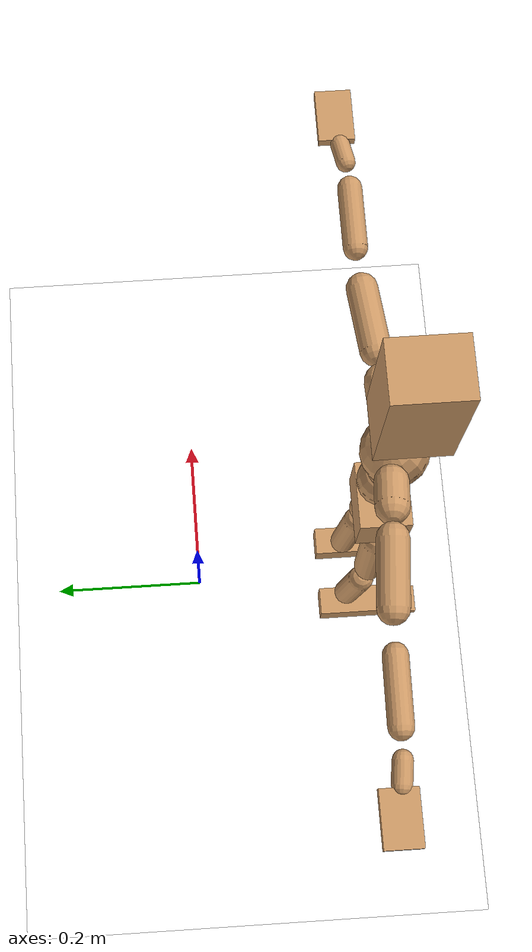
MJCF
<mujoco model="humanoid">
  <option integrator="implicitfast" />

  <visual>
    <global offwidth="1280" offheight="960" />
    <headlight active="1" ambient="0.34 0.34 0.34" diffuse="0.5 0.5 0.5" />
  </visual>

  <default>
    <joint damping="2" stiffness="2" armature="0.01" limited="true" solimplimit="0 .99 .01" />
    <geom condim="1" friction="0.7 0.005 0.0001" solimp=".99 .99 .003" solref="0.015 1" margin="0.001" rgba="0.8 0.6 .4 1" />
    <default class="smplcontact">
      <geom condim="3" friction="1. 0.005 0.0001" solref="0.015 1" solimp="0.98 0.98 0.001" priority="1" />
    </default>
    <default class="stiff_medium">
      <joint stiffness="10" />
    </default>
    <default class="stiff_medium_higher">
      <joint stiffness="50" />
    </default>
    <default class="stiff_high">
      <joint stiffness="100" />
    </default>
  </default>

  <asset>
    <texture type="skybox" builtin="gradient" rgb1="0.99 0.99 0.99" rgb2="0.608 0.828 0.892" width="100" />
    <texture builtin="flat" height="1278" mark="cross" markrgb="1 1 1" name="texgeom" random="0.01" rgb1="0.8 0.6 0.4" rgb2="0.8 0.6 0.4" type="cube" width="127" />
    <texture name="texplane" type="2d" builtin="checker" markrgb="1 1 1" rgb1="0.756 0.772 0.76" rgb2="0.6 0.6 0.6" width="100" height="100" />
    <material name="MatPlane" reflectance="0.5" texture="texplane" texrepeat="1 1" texuniform="true" />
    <material name="geom" texture="texgeom" texuniform="true" />
  </asset>

  <worldbody>
    <light name="tracking_light" pos="0 0 7" dir="0 0 -1" directional="true" cutoff="100" exponent="1" diffuse="1 1 1" specular="0.1 0.1 0.1" mode="trackcom" />
    <camera name="back" pos="0 3 2.4" xyaxes="-1 0 0 0 -1 2" mode="trackcom" />
    <camera name="side" pos="-3 0 2.4" xyaxes="0 -1 0 1 0 2" mode="trackcom" />
    <camera name="front_side" pos="-2.8 -2.8 0.8" xyaxes="0.5 -0.5 0 0.1 0.1 1" mode="trackcom" />
    <geom condim="3" name="floor" pos="0 0 0" rgba="1 1 1 1" size="100 100 .2" type="plane" material="MatPlane" />
    <body name="Pelvis" pos="-0.0018 -0.2233 0.409627" euler="90 0 0">
      <site name="Pelvis" size="0.01" />
      <freejoint name="Pelvis" />
      <geom type="box" pos="0 -0.0063162 -0.00204875" size="0.0398202 0.0376884 0.0309175" quat="1.0000 0.0000 0.0000 0.0000" density="3165.830099" name="Pelvis" />
      <body name="L_Hip" pos="0.0258888 -0.0477108 -0.002533">
        <joint name="L_Hip_x" type="hinge" pos="0 0 0" axis="1 0 0" stiffness="0.18235260416666665" range="-160.0 22.92" class="stiff_medium" damping="0.19026563786426617" armature="8.823202258754832e-05"/>
        <joint name="L_Hip_y" type="hinge" pos="0 0 0" axis="0 1 0" stiffness="0.18828845050878812" range="-70.0 70.0" class="stiff_medium" damping="0.11500928606782551" armature="7.024932143256214e-05"/>
        <joint name="L_Hip_z" type="hinge" pos="0 0 0" axis="0 0 1" stiffness="0.1865578125" range="-28.65 90.0" class="stiff_medium" damping="0.1281541375755882" armature="8.803428147906047e-05"/>
        <geom type="capsule" density="2040.816327" fromto="0.00297807 -0.0324683 -0.000389521 0.0118525 -0.129957 -0.00155835" size="0.0189973" name="L_Hip" />
        <body name="L_Knee" pos="0.0148306 -0.162426 -0.00194787">
          <joint name="L_Knee_x" type="hinge" pos="0 0 0" axis="1 0 0" range="-5.16 171.89" damping="0.11375579093782" armature="0.00010128647240603109" stiffness="0.0399250625"/>
          <joint name="L_Knee_y" type="hinge" pos="0 0 0" axis="0 1 0" range="-4.58 6.88" damping="0.11122675483468286" armature="0.00010198501887458814" stiffness="0.037908113636363636"/>
          <joint name="L_Knee_z" type="hinge" pos="0 0 0" axis="0 0 1" range="-6.88 4.58" damping="0.11702980073613345" armature="0.00010023213493265659" stiffness="0.042700796099290776"/>
          <geom type="capsule" density="1234.567901" fromto="-0.00117293 -0.0344578 -0.00377438 -0.00472271 -0.137834 -0.0151597" size="0.0167115" name="L_Knee" />
          <body name="L_Ankle" pos="-0.00589564 -0.172292 -0.018934">
            <joint name="L_Ankle_x" type="hinge" pos="0 0 0" axis="1 0 0" range="-45.84 45.84" class="stiff_medium" damping="0.16036848580518293" armature="0.0001830664840301758" stiffness="0.390235446969697"/>
            <joint name="L_Ankle_y" type="hinge" pos="0 0 0" axis="0 1 0" range="-74.48 22.92" class="stiff_medium" damping="0.07487786336835861" armature="0.00018441544738383804" stiffness="0.33780578351449275"/>
            <joint name="L_Ankle_z" type="hinge" pos="0 0 0" axis="0 0 1" range="-4.58 4.58" class="stiff_medium" damping="0.09935943537263363" armature="0.0001010030677281139" stiffness="0.27150708333333334"/>
            <geom type="box" pos="0.00867925 -0.00890275 0.0126953" size="0.0179918 0.017284 0.044591" quat="1.0000 0.0000 0.0000 0.0000" density="449.071558" name="L_Ankle" class="smplcontact" />
            <body name="L_Toe" pos="0.009834 -0.0207855 0.0625848">
              <joint name="L_Toe_x" type="hinge" pos="0 0 0" axis="1 0 0" range="-91.67 22.92" armature="0.00018943004890723808" damping="0.05364322478676886" stiffness="0.07595404166666667"/>
              <joint name="L_Toe_y" type="hinge" pos="0 0 0" axis="0 1 0" range="-4.58 4.58" armature="0.00016454146373295087" damping="0.0498111636025279" stiffness="0.07539595075757577"/>
              <joint name="L_Toe_z" type="hinge" pos="0 0 0" axis="0 0 1" range="-4.58 4.58" armature="0.0001010025448747252" damping="0.033097939538757844" stiffness="0.05423"/>
              <geom type="box" pos="-0.0011175 0.00204875 0.0130101" size="0.0178055 0.00745 0.0260202" quat="1.0000 0.0000 0.0000 0.0000" density="423.206892" name="L_Toe" class="smplcontact" />
            </body>
          </body>
        </body>
      </body>
      <body name="R_Hip" pos="-0.0252182 -0.047241 -0.00160175">
        <joint name="R_Hip_x" type="hinge" pos="0 0 0" axis="1 0 0" stiffness="0.18235260416666665" range="-160.0 22.92" class="stiff_medium" damping="0.19026563786426617" armature="8.823202258754832e-05"/>
        <joint name="R_Hip_y" type="hinge" pos="0 0 0" axis="0 1 0" stiffness="0.18828845050878812" range="-70.0 70.0" class="stiff_medium" damping="0.11500928606782551" armature="7.024932143256214e-05"/>
        <joint name="R_Hip_z" type="hinge" pos="0 0 0" axis="0 0 1" stiffness="0.1865578125" range="-90.0 28.65" class="stiff_medium" damping="0.1281541375755882" armature="8.803428147906047e-05"/>
        <geom type="capsule" density="2040.816327" fromto="-0.00332475 -0.0331178 -0.000775013 -0.0132382 -0.132512 -0.00306938" size="0.0187193" name="R_Hip" />
        <body name="R_Knee" pos="-0.0165629 -0.165629 -0.0038444">
          <joint name="R_Knee_x" type="hinge" pos="0 0 0" axis="1 0 0" range="-5.16 171.89" damping="0.11375579093782" armature="0.00010128647240603109" stiffness="0.0399250625"/>
          <joint name="R_Knee_y" type="hinge" pos="0 0 0" axis="0 1 0" range="-6.88 4.58" damping="0.11122675483468286" armature="0.00010198501887458814" stiffness="0.037908113636363636"/>
          <joint name="R_Knee_z" type="hinge" pos="0 0 0" axis="0 0 1" range="-4.58 6.88" damping="0.11702980073613345" armature="0.00010023213493265659" stiffness="0.042700796099290776"/>
          <geom type="capsule" density="1234.567901" fromto="0.00137722 -0.0345033 -0.00367194 0.00544648 -0.137966 -0.0146243" size="0.0167115" name="R_Knee" />
          <body name="R_Ankle" pos="0.0068237 -0.17247 -0.0182963">
            <joint name="R_Ankle_x" type="hinge" pos="0 0 0" axis="1 0 0" range="-45.84 45.84" class="stiff_medium" damping="0.16036848580518293" armature="0.0001830664840301758" stiffness="0.390235446969697"/>
            <joint name="R_Ankle_y" type="hinge" pos="0 0 0" axis="0 1 0" range="-22.92 74.48" class="stiff_medium" damping="0.07487786336835861" armature="0.00018441544738383804" stiffness="0.33780578351449275"/>
            <joint name="R_Ankle_z" type="hinge" pos="0 0 0" axis="0 0 1" range="-4.58 4.58" class="stiff_medium" damping="0.09935943537263363" armature="0.0001010030677281139" stiffness="0.27150708333333334"/>
            <geom type="box" pos="-0.007897 -0.0064815 0.0134298" size="0.0179918 0.0178055 0.0453779" quat="1.0000 0.0000 0.0000 0.0000" density="434.700981" name="R_Ankle" class="smplcontact" />
            <body name="R_Toe" pos="-0.0094615 -0.0179172 0.0646832">
              <joint name="R_Toe_x" type="hinge" pos="0 0 0" axis="1 0 0" range="-91.67 22.92" armature="0.00018943004890723808" damping="0.05364322478676886" stiffness="0.07595404166666667"/>
              <joint name="R_Toe_y" type="hinge" pos="0 0 0" axis="0 1 0" range="-4.58 4.58" armature="0.00016454146373295087" damping="0.0498111636025279" stiffness="0.07539595075757577"/>
              <joint name="R_Toe_z" type="hinge" pos="0 0 0" axis="0 0 1" range="-4.58 4.58" armature="0.0001010025448747252" damping="0.033097939538757844" stiffness="0.05423"/>
              <geom type="box" pos="0.0015645 0.00167625 0.0119084" size="0.0178427 0.008046 0.0258628" quat="1.0000 0.0000 0.0000 0.0000" density="407.384095" name="R_Toe" class="smplcontact" />
            </body>
          </body>
        </body>
      </body>
      <body name="Torso" pos="-0.00093125 0.056898 -0.00994575">
        <joint name="Torso_x" type="hinge" pos="0 0 0" axis="1 0 0" range="-25.78 57.3" class="stiff_medium" damping="0.6975808108661036" armature="0.000380460678160998" stiffness="0.5684558695652174"/>
        <joint name="Torso_y" type="hinge" pos="0 0 0" axis="0 1 0" range="-57.3 57.3" class="stiff_high" damping="0.5225025891735547" armature="0.00011451120193379242" stiffness="5.960311111111112"/>
        <joint name="Torso_z" type="hinge" pos="0 0 0" axis="0 0 1" range="-34.38 34.38" class="stiff_high" damping="0.8097336039904492" armature="0.0002931874650336505" stiffness="5.590864102564101"/>
        <geom type="capsule" density="2040.816327" fromto="0.00128568 0.0321829 0.000257137 0.00155033 0.0393284 0.000310067" size="0.0290451" name="Torso" />
        <body name="Spine" pos="0.00283658 0.0715642 0.000567316">
          <joint name="Spine_x" type="hinge" pos="0 0 0" axis="1 0 0" stiffness="0.6281864583333334" range="-25.78 57.3" class="stiff_medium" damping="0.8234174730231572" armature="0.00047969928240641866"/>
          <joint name="Spine_y" type="hinge" pos="0 0 0" axis="0 1 0" stiffness="0.705954705882353" range="-57.3 57.3" class="stiff_high" damping="0.2275689407086761" armature="0.00011462231204368893"/>
          <joint name="Spine_z" type="hinge" pos="0 0 0" axis="0 0 1" stiffness="1.325285" range="-34.38 34.38" class="stiff_high" damping="0.5213367694272" armature="0.00028483603648019263"/>
          <geom type="capsule" density="2040.816327" fromto="0.000332166 0.0125814 0.00606797 0.000385096 0.0153867 0.00744415" size="0.0285163" name="Spine" />
          <body name="Chest" pos="0.000717263 0.0279681 0.0135121">
            <joint name="Chest_x" type="hinge" pos="0 0 0" axis="1 0 0" stiffness="0.7266799999999998" range="-25.78 57.3" class="stiff_medium" damping="0.9345072666208408" armature="0.0005341209833257832"/>
            <joint name="Chest_y" type="hinge" pos="0 0 0" axis="0 1 0" stiffness="0.6774200000000001" range="-57.3 57.3" class="stiff_high" damping="0.2231245872745042" armature="0.00011483039843823313"/>
            <joint name="Chest_z" type="hinge" pos="0 0 0" axis="0 0 1" stiffness="1.510981081081081" range="-34.38 34.38" class="stiff_high" damping="0.5444287567577323" armature="0.0002724523700528208"/>
            <geom type="capsule" density="2040.816327" fromto="-0.000408327 0.0360871 -0.00920171 -0.000461257 0.0440796 -0.011266" size="0.0378455" name="Chest" />
            <body name="Neck" pos="-0.00126932 0.112765 -0.0244619">
              <joint name="Neck_x" type="hinge" pos="0 0 0" axis="1 0 0" range="-28.65 57.3" class="stiff_medium_higher" damping="1.1234691394679754" armature="0.0009683138544483662" stiffness="6.517426666666666"/>
              <joint name="Neck_y" type="hinge" pos="0 0 0" axis="0 1 0" range="-40.11 40.11" class="stiff_medium_higher" damping="0.8742511543280646" armature="0.0006130327976089243" stiffness="6.233884090909092"/>
              <joint name="Neck_z" type="hinge" pos="0 0 0" axis="0 0 1" range="-40.11 40.11" class="stiff_medium_higher" damping="1.1951336836934041" armature="0.0009990208582020947" stiffness="7.148722222222221"/>
              <geom type="capsule" density="1000" fromto="0.00052978 0.00682198 0.0054001 0.00215604 0.0272814 0.0215578" size="0.0163238" name="Neck" />
              <body name="Head" pos="0.00272274 0.0340968 0.0269153">
                <joint name="Head_x" type="hinge" pos="0 0 0" axis="1 0 0" range="-28.65 57.3" class="stiff_medium_higher" damping="0.2880398144245498" armature="0.0012002859655494793" stiffness="8.64033"/>
                <joint name="Head_y" type="hinge" pos="0 0 0" axis="0 1 0" range="-40.11 40.11" class="stiff_medium_higher" damping="0.20152609301521382" armature="0.0006583691987363101" stiffness="7.71086463414634"/>
                <joint name="Head_z" type="hinge" pos="0 0 0" axis="0 0 1" range="-40.11 40.11" class="stiff_medium_higher" damping="0.2862990834935576" armature="0.0012334850921524516" stiffness="8.306460869565218"/>
                <geom type="box" pos="-0.0022785 0.0665848 -0.006293" size="0.0328755 0.0877155 0.04123" quat="1.0000 0.0000 0.0000 0.0000" density="1018.069894" name="Head" />
                <geom type="capsule" name="nose" size="0.01085 0.005425" pos="0 0.053207 0.027125" quat="1 0 0 0" mass="0" contype="0" conaffinity="0" />
              </body>
            </body>
            <body name="L_Thorax" pos="0.0296404 0.0644388 -0.0176507">
              <joint name="L_Thorax_x" type="hinge" pos="0 0 0" axis="1 0 0" range="-10.89 4.58" class="stiff_medium_higher" damping="0.3074086792088993" armature="9.787589825785088e-05" stiffness="1.2068867021276595"/>
              <joint name="L_Thorax_y" type="hinge" pos="0 0 0" axis="0 1 0" range="-28.65 17.19" class="stiff_medium_higher" damping="0.3446673158617735" armature="0.00011905539702737181" stiffness="1.247271875"/>
              <joint name="L_Thorax_z" type="hinge" pos="0 0 0" axis="0 0 1" range="-31.51 40.11" class="stiff_medium_higher" damping="0.3438803344793283" armature="0.00011913908641885075" stiffness="1.240710416666667"/>
              <geom type="capsule" density="1000" fromto="0.00936979 0.00314042 -0.000921768 0.0374779 0.0125613 -0.00365021" size="0.0191415" name="L_Thorax" />
              <body name="L_Shoulder" pos="0.0468477 0.0157017 -0.00457198">
                <joint name="L_Shoulder_x" type="hinge" pos="0 0 0" axis="1 0 0" range="-97.4 97.4" class="stiff_medium" damping="0.08219494194113662" armature="7.783660906213912e-05" stiffness="0.24110364583333327"/>
                <joint name="L_Shoulder_y" type="hinge" pos="0 0 0" axis="0 1 0" range="-108.86 80.21" class="stiff_medium" damping="0.09952806925016006" armature="0.00011579968543447627" stiffness="0.23761906249999998"/>
                <joint name="L_Shoulder_z" type="hinge" pos="0 0 0" axis="0 0 1" range="-97.4 85.94" class="stiff_medium" damping="0.09950434634237408" armature="0.00011580779639098313" stiffness="0.2374891666666667"/>
                <geom type="capsule" density="1000" fromto="0.0244194 -0.00121412 -0.00258733 0.0977233 -0.00478992 -0.0103506" size="0.0173557" name="L_Shoulder" />
                <body name="L_Elbow" pos="0.122143 -0.00600404 -0.0129379">
                  <joint name="L_Elbow_x" type="hinge" pos="0 0 0" axis="1 0 0" range="-17.19 4.58" damping="0.06596173600906506" armature="6.945742575842557e-05" stiffness="0.05011358333333333"/>
                  <joint name="L_Elbow_y" type="hinge" pos="0 0 0" axis="0 1 0" range="-180.0 17.19" damping="0.08797758448200091" armature="0.00012355963332524514" stiffness="0.0501138125"/>
                  <joint name="L_Elbow_z" type="hinge" pos="0 0 0" axis="0 0 1" range="-100.84 4.58" damping="0.08806795910326286" armature="0.00012358924577732738" stiffness="0.050204791666666665"/>
                  <geom type="capsule" density="1000" fromto="0.0234309 0.000846575 -9.85512e-05 0.0938177 0.00338728 -0.000427901" size="0.0135958" name="L_Elbow" />
                  <body name="L_Wrist" pos="0.117249 0.00423385 -0.000560023">
                    <joint name="L_Wrist_x" type="hinge" pos="0 0 0" axis="1 0 0" range="-180.0 22.92" armature="9.036925364159238e-05" damping="0.033397282021969094" stiffness="0.061712275"/>
                    <joint name="L_Wrist_y" type="hinge" pos="0 0 0" axis="0 1 0" range="-17.19 17.19" armature="0.0001533316168566774" damping="0.04302365919743731" stiffness="0.06036052083333333"/>
                    <joint name="L_Wrist_z" type="hinge" pos="0 0 0" axis="0 0 1" range="-22.92 22.92" armature="0.00015571537256287696" damping="0.04355124062439201" stiffness="0.060903124999999995"/>
                    <geom type="capsule" density="1000" fromto="0.00790398 -0.000757253 -0.00141143 0.0316172 -0.0030627 -0.00564593" size="0.0106753" name="L_Wrist" class="smplcontact" />
                    <body name="L_Hand" pos="0.0395201 -0.00385342 -0.00702359">
                      <joint name="L_Hand_x" type="hinge" pos="0 0 0" axis="1 0 0" range="-17.19 17.19" armature="0.00010050220989139483" damping="0.03839170806781733" stiffness="0.07332790243902439"/>
                      <joint name="L_Hand_y" type="hinge" pos="0 0 0" axis="0 1 0" range="-51.57 51.57" armature="0.0001748013602223626" damping="0.0510241559168507" stiffness="0.07446922849213691"/>
                      <joint name="L_Hand_z" type="hinge" pos="0 0 0" axis="0 0 1" range="-91.67 91.67" armature="0.00019492055321943701" damping="0.05425999109548453" stiffness="0.07552170833333334"/>
                      <geom type="box" pos="0.0257346 0.0003725 -0.0021605" size="0.030537 0.0058855 0.0200405" quat="1.0000 0.0000 0.0000 0.0000" density="400.552564" name="L_Hand" class="smplcontact" />
                    </body>
                  </body>
                </body>
              </body>
            </body>
            <body name="R_Thorax" pos="-0.0310176 0.0632477 -0.0193256">
              <joint name="R_Thorax_x" type="hinge" pos="0 0 0" axis="1 0 0" range="-10.89 4.58" class="stiff_medium_higher" damping="0.3074086792088993" armature="9.787589825785088e-05" stiffness="1.2068867021276595"/>
              <joint name="R_Thorax_y" type="hinge" pos="0 0 0" axis="0 1 0" range="-17.19 28.65" class="stiff_medium_higher" damping="0.3446673158617735" armature="0.00011905539702737181" stiffness="1.247271875"/>
              <joint name="R_Thorax_z" type="hinge" pos="0 0 0" axis="0 0 1" range="-40.11 31.51" class="stiff_medium_higher" damping="0.3438803344793283" armature="0.00011913908641885075" stiffness="1.240710416666667"/>
              <geom type="capsule" density="1000" fromto="-0.00988374 0.00334606 -0.000931513 -0.0395362 0.0133847 -0.00376291" size="0.0187741" name="R_Thorax" />
              <body name="R_Shoulder" pos="-0.0494244 0.016769 -0.00469485">
                <joint name="R_Shoulder_x" type="hinge" pos="0 0 0" axis="1 0 0" range="-97.4 97.4" class="stiff_medium" damping="0.08219494194113662" armature="7.783660906213912e-05" stiffness="0.24110364583333327"/>
                <joint name="R_Shoulder_y" type="hinge" pos="0 0 0" axis="0 1 0" range="-80.21 108.86" class="stiff_medium" damping="0.09952806925016006" armature="0.00011579968543447627" stiffness="0.23761906249999998"/>
                <joint name="R_Shoulder_z" type="hinge" pos="0 0 0" axis="0 0 1" range="-85.94 97.4" class="stiff_medium" damping="0.09950434634237408" armature="0.00011580779639098313" stiffness="0.2374891666666667"/>
                <geom type="capsule" density="1000" fromto="-0.023855 -0.00126542 -0.00201796 -0.0955122 -0.00502942 -0.00804036" size="0.0178257" name="R_Shoulder" />
                <body name="R_Elbow" pos="-0.119367 -0.00626124 -0.0100583">
                  <joint name="R_Elbow_x" type="hinge" pos="0 0 0" axis="1 0 0" range="-17.19 4.58" damping="0.06596173600906506" armature="6.945742575842557e-05" stiffness="0.05011358333333333"/>
                  <joint name="R_Elbow_y" type="hinge" pos="0 0 0" axis="0 1 0" range="-17.19 180.0" damping="0.08797758448200091" armature="0.00012355963332524514" stiffness="0.0501138125"/>
                  <joint name="R_Elbow_z" type="hinge" pos="0 0 0" axis="0 0 1" range="-4.58 100.84" damping="0.08806795910326286" armature="0.00012358924577732738" stiffness="0.050204791666666665"/>
                  <geom type="capsule" density="1000" fromto="-0.0240428 0.000744091 -0.000517749 -0.0960764 0.00290839 -0.0020704" size="0.0136966" name="R_Elbow" />
                  <body name="R_Wrist" pos="-0.120119 0.00365249 -0.00262172">
                    <joint name="R_Wrist_x" type="hinge" pos="0 0 0" axis="1 0 0" range="-180.0 22.92" armature="9.036925364159238e-05" damping="0.033397282021969094" stiffness="0.061712275"/>
                    <joint name="R_Wrist_y" type="hinge" pos="0 0 0" axis="0 1 0" range="-17.19 17.19" armature="0.0001533316168566774" damping="0.04302365919743731" stiffness="0.06036052083333333"/>
                    <joint name="R_Wrist_z" type="hinge" pos="0 0 0" axis="0 0 1" range="-22.92 22.92" armature="0.00015571537256287696" damping="0.04355124062439201" stiffness="0.060903124999999995"/>
                    <geom type="capsule" density="1000" fromto="-0.00795176 -0.000568788 -0.000983046 -0.0318532 -0.00230964 -0.00390015" size="0.0109438" name="R_Wrist" class="smplcontact" />
                    <body name="R_Hand" pos="-0.0398033 -0.00287831 -0.00484942">
                      <joint name="R_Hand_x" type="hinge" pos="0 0 0" axis="1 0 0" range="-17.19 17.19" armature="0.00010050220989139483" damping="0.03839170806781733" stiffness="0.07332790243902439"/>
                      <joint name="R_Hand_y" type="hinge" pos="0 0 0" axis="0 1 0" range="-51.57 51.57" armature="0.0001748013602223626" damping="0.0510241559168507" stiffness="0.07446922849213691"/>
                      <joint name="R_Hand_z" type="hinge" pos="0 0 0" axis="0 0 1" range="-91.67 91.67" armature="0.00019492055321943701" damping="0.05425999109548453" stiffness="0.07552170833333334"/>
                      <geom type="box" pos="-0.0241164 -0.00033525 -0.00294275" size="0.0297018 0.006109 0.0203385" quat="1.0000 0.0000 0.0000 0.0000" density="403.679611" name="R_Hand" class="smplcontact" />
                    </body>
                  </body>
                </body>
              </body>
            </body>
          </body>
        </body>
      </body>
    </body>
  </worldbody>
  <actuator>
    <general name="L_Hip_x" joint="L_Hip_x" biastype="affine" gainprm="5.2395385443522" biasprm="-3.926503081455279 -3.282346875 -0.02536875171523549" ctrllimited="true" ctrlrange="-1 1" forcerange="-6.56469375 6.56469375" />
    <general name="L_Hip_y" joint="L_Hip_y" biastype="affine" gainprm="4.140679290119499" biasprm="0.0 -3.389192109158186 -0.023001857213565104" ctrllimited="true" ctrlrange="-1 1" forcerange="-6.778384218316372 6.778384218316372" />
    <general name="L_Hip_z" joint="L_Hip_z" biastype="affine" gainprm="3.4769709352263574" biasprm="1.7978269437516814 -3.358040625 -0.025630827515117638" ctrllimited="true" ctrlrange="-1 1" forcerange="-6.71608125 6.71608125" />
    <general name="L_Knee_x" joint="L_Knee_x" biastype="affine" gainprm="5.551769378240067" biasprm="5.228164407986253 -3.593255625 -0.028438947734455" ctrllimited="true" ctrlrange="-1 1" forcerange="-7.18651125 7.18651125" />
    <general name="L_Knee_y" joint="L_Knee_y" biastype="affine" gainprm="0.3411981540072958" biasprm="0.06847781450408205 -3.4117302272727272 -0.027806688708670715" ctrllimited="true" ctrlrange="-1 1" forcerange="-6.8234604545454545 6.8234604545454545" />
    <general name="L_Knee_z" joint="L_Knee_z" biastype="affine" gainprm="0.38433547349462716" biasprm="-0.07713539171358137 -3.84307164893617 -0.029257450184033362" ctrllimited="true" ctrlrange="-1 1" forcerange="-7.68614329787234 7.68614329787234" />
    <general name="L_Ankle_x" joint="L_Ankle_x" biastype="affine" gainprm="2.809902184244795" biasprm="0.0 -3.5121190227272727 -0.053456161935060975" ctrllimited="true" ctrlrange="-1 1" forcerange="-7.024238045454545 7.024238045454545" />
    <general name="L_Ankle_y" joint="L_Ankle_y" biastype="affine" gainprm="2.584139288664284" biasprm="-1.367948888331935 -3.040252051630435 -0.04991857557890574" ctrllimited="true" ctrlrange="-1 1" forcerange="-6.08050410326087 6.08050410326087" />
    <general name="L_Ankle_z" joint="L_Ankle_z" biastype="affine" gainprm="0.19532890677304848" biasprm="0.0 -2.44356375 -0.033119811790877876" ctrllimited="true" ctrlrange="-1 1" forcerange="-4.8871275 4.8871275" />
    <general name="L_Toe_x" joint="L_Toe_x" biastype="affine" gainprm="2.734308299038481" biasprm="-1.6404895327593645 -2.7343455 -0.021457289914707547" ctrllimited="true" ctrlrange="-1 1" forcerange="-5.468691 5.468691" />
    <general name="L_Toe_y" joint="L_Toe_y" biastype="affine" gainprm="0.21696684234954272" biasprm="0.0 -2.7142542272727277 -0.01992446544101116" ctrllimited="true" ctrlrange="-1 1" forcerange="-5.428508454545455 5.428508454545455" />
    <general name="L_Toe_z" joint="L_Toe_z" biastype="affine" gainprm="0.15605760975742383" biasprm="0.0 -1.95228 -0.013239175815503138" ctrllimited="true" ctrlrange="-1 1" forcerange="-3.90456 3.90456" />
    <general name="R_Hip_x" joint="R_Hip_x" biastype="affine" gainprm="5.2395385443522" biasprm="-3.926503081455279 -3.282346875 -0.02536875171523549" ctrllimited="true" ctrlrange="-1 1" forcerange="-6.56469375 6.56469375" />
    <general name="R_Hip_y" joint="R_Hip_y" biastype="affine" gainprm="4.140679290119499" biasprm="0.0 -3.389192109158186 -0.023001857213565104" ctrllimited="true" ctrlrange="-1 1" forcerange="-6.778384218316372 6.778384218316372" />
    <general name="R_Hip_z" joint="R_Hip_z" biastype="affine" gainprm="3.4769709352263574" biasprm="-1.7978269437516814 -3.358040625 -0.025630827515117638" ctrllimited="true" ctrlrange="-1 1" forcerange="-6.71608125 6.71608125" />
    <general name="R_Knee_x" joint="R_Knee_x" biastype="affine" gainprm="5.551769378240067" biasprm="5.228164407986253 -3.593255625 -0.028438947734455" ctrllimited="true" ctrlrange="-1 1" forcerange="-7.18651125 7.18651125" />
    <general name="R_Knee_y" joint="R_Knee_y" biastype="affine" gainprm="0.3411981540072958" biasprm="-0.06847781450408205 -3.4117302272727272 -0.027806688708670715" ctrllimited="true" ctrlrange="-1 1" forcerange="-6.8234604545454545 6.8234604545454545" />
    <general name="R_Knee_z" joint="R_Knee_z" biastype="affine" gainprm="0.38433547349462716" biasprm="0.07713539171358137 -3.84307164893617 -0.029257450184033362" ctrllimited="true" ctrlrange="-1 1" forcerange="-7.68614329787234 7.68614329787234" />
    <general name="R_Ankle_x" joint="R_Ankle_x" biastype="affine" gainprm="2.809902184244795" biasprm="0.0 -3.5121190227272727 -0.053456161935060975" ctrllimited="true" ctrlrange="-1 1" forcerange="-7.024238045454545 7.024238045454545" />
    <general name="R_Ankle_y" joint="R_Ankle_y" biastype="affine" gainprm="2.584139288664284" biasprm="1.367948888331935 -3.040252051630435 -0.04991857557890574" ctrllimited="true" ctrlrange="-1 1" forcerange="-6.08050410326087 6.08050410326087" />
    <general name="R_Ankle_z" joint="R_Ankle_z" biastype="affine" gainprm="0.19532890677304848" biasprm="0.0 -2.44356375 -0.033119811790877876" ctrllimited="true" ctrlrange="-1 1" forcerange="-4.8871275 4.8871275" />
    <general name="R_Toe_x" joint="R_Toe_x" biastype="affine" gainprm="2.734308299038481" biasprm="-1.6404895327593645 -2.7343455 -0.021457289914707547" ctrllimited="true" ctrlrange="-1 1" forcerange="-5.468691 5.468691" />
    <general name="R_Toe_y" joint="R_Toe_y" biastype="affine" gainprm="0.21696684234954272" biasprm="0.0 -2.7142542272727277 -0.01992446544101116" ctrllimited="true" ctrlrange="-1 1" forcerange="-5.428508454545455 5.428508454545455" />
    <general name="R_Toe_z" joint="R_Toe_z" biastype="affine" gainprm="0.15605760975742383" biasprm="0.0 -1.95228 -0.013239175815503138" ctrllimited="true" ctrlrange="-1 1" forcerange="-3.90456 3.90456" />
    <general name="Torso_x" joint="Torso_x" biastype="affine" gainprm="9.891265439408823" biasprm="3.7526803881820654 -13.64294086956522 -0.1860215495642943" ctrllimited="true" ctrlrange="-1 1" forcerange="-20.46441130434783 20.46441130434783" />
    <general name="Torso_y" joint="Torso_y" biastype="affine" gainprm="14.305800374229083" biasprm="0.0 -14.304746666666668 -0.10450051783471094" ctrllimited="true" ctrlrange="-1 1" forcerange="-21.457120000000003 21.457120000000003" />
    <general name="Torso_z" joint="Torso_z" biastype="affine" gainprm="8.051437344096831" biasprm="0.0 -13.418073846153844 -0.16194672079808986" ctrllimited="true" ctrlrange="-1 1" forcerange="-20.127110769230764 20.127110769230764" />
    <general name="Spine_x" joint="Spine_x" biastype="affine" gainprm="10.930591691435188" biasprm="4.146993862711086 -15.076475000000002 -0.21957799280617524" ctrllimited="true" ctrlrange="-1 1" forcerange="-22.614712500000003 22.614712500000003" />
    <general name="Spine_y" joint="Spine_y" biastype="affine" gainprm="16.944160979740975" biasprm="0.0 -16.942912941176473 -0.11378447035433804" ctrllimited="true" ctrlrange="-1 1" forcerange="-25.41436941176471 25.41436941176471" />
    <general name="Spine_z" joint="Spine_z" biastype="affine" gainprm="9.542754880840022" biasprm="0.0 -15.903419999999999 -0.17377892314239998" ctrllimited="true" ctrlrange="-1 1" forcerange="-23.85513 23.85513" />
    <general name="Chest_x" joint="Chest_x" biastype="affine" gainprm="12.644402414222878" biasprm="4.7972022640383365 -17.440319999999996 -0.24920193776555755" ctrllimited="true" ctrlrange="-1 1" forcerange="-26.160479999999993 26.160479999999993" />
    <general name="Chest_y" joint="Chest_y" biastype="affine" gainprm="16.259277592816257" biasprm="0.0 -16.258080000000003 -0.1115622936372521" ctrllimited="true" ctrlrange="-1 1" forcerange="-24.387120000000003 24.387120000000003" />
    <general name="Chest_z" joint="Chest_z" biastype="affine" gainprm="10.879865150773924" biasprm="0.0 -18.131772972972975 -0.18147625225257744" ctrllimited="true" ctrlrange="-1 1" forcerange="-27.197659459459462 27.197659459459462" />
    <general name="Neck_x" joint="Neck_x" biastype="affine" gainprm="3.5196696446717253" biasprm="1.173223214890575 -4.6925472 -0.08987753115743805" ctrllimited="true" ctrlrange="-1 1" forcerange="-9.3850944 9.3850944" />
    <general name="Neck_y" joint="Neck_y" biastype="affine" gainprm="3.142109016896711" biasprm="0.0 -4.488396545454545 -0.06994009234624517" ctrllimited="true" ctrlrange="-1 1" forcerange="-8.97679309090909 8.97679309090909" />
    <general name="Neck_z" joint="Neck_z" biastype="affine" gainprm="3.6032213987569794" biasprm="0.0 -5.14708 -0.09561069469547234" ctrllimited="true" ctrlrange="-1 1" forcerange="-10.29416 10.29416" />
    <general name="Head_x" joint="Head_x" biastype="affine" gainprm="3.1107479251469856" biasprm="1.0369159750489951 -4.1473584 -0.11521592576981993" ctrllimited="true" ctrlrange="-1 1" forcerange="-8.2947168 8.2947168" />
    <general name="Head_y" joint="Head_y" biastype="affine" gainprm="2.591041362730667" biasprm="0.0 -3.701215024390243 -0.08061043720608553" ctrllimited="true" ctrlrange="-1 1" forcerange="-7.402430048780486 7.402430048780486" />
    <general name="Head_z" joint="Head_z" biastype="affine" gainprm="2.791176438974011" biasprm="0.0 -3.987101217391304 -0.11451963339742305" ctrllimited="true" ctrlrange="-1 1" forcerange="-7.974202434782608 7.974202434782608" />
    <general name="L_Thorax_x" joint="L_Thorax_x" biastype="affine" gainprm="0.39103481842292104" biasprm="-0.15949771843882565 -2.8965280851063824 -0.02459269433671195" ctrllimited="true" ctrlrange="-1 1" forcerange="-5.793056170212765 5.793056170212765" />
    <general name="L_Thorax_y" joint="L_Thorax_y" biastype="affine" gainprm="1.1974692007521133" biasprm="-0.2993673001880283 -2.9934525 -0.02757338526894188" ctrllimited="true" ctrlrange="-1 1" forcerange="-5.986905 5.986905" />
    <general name="L_Thorax_z" joint="L_Thorax_z" biastype="affine" gainprm="1.8610727867949308" biasprm="0.22347425253332034 -2.9777050000000003 -0.027510426758346265" ctrllimited="true" ctrlrange="-1 1" forcerange="-5.9554100000000005 5.9554100000000005" />
    <general name="L_Shoulder_x" joint="L_Shoulder_x" biastype="affine" gainprm="1.9673486853296498" biasprm="0.0 -1.1572974999999999 -0.021918651184303098" ctrllimited="true" ctrlrange="-1 1" forcerange="-2.3145949999999997 2.3145949999999997" />
    <general name="L_Shoulder_y" joint="L_Shoulder_y" biastype="affine" gainprm="1.8818825342603218" biasprm="-0.28516387902130547 -1.1405715 -0.02654081846670935" ctrllimited="true" ctrlrange="-1 1" forcerange="-2.281143 2.281143" />
    <general name="L_Shoulder_z" joint="L_Shoulder_z" biastype="affine" gainprm="1.8238521937927343" biasprm="-0.11400319701573461 -1.139948 -0.026534492357966424" ctrllimited="true" ctrlrange="-1 1" forcerange="-2.279896 2.279896" />
    <general name="L_Elbow_x" joint="L_Elbow_x" biastype="affine" gainprm="0.34273918483849536" biasprm="-0.1985273826740206 -1.8040889999999998 -0.010553877761450411" ctrllimited="true" ctrlrange="-1 1" forcerange="-3.6081779999999997 3.6081779999999997" />
    <general name="L_Elbow_y" joint="L_Elbow_y" biastype="affine" gainprm="3.104503854828188" biasprm="-2.5632348121333606 -1.80409725 -0.014076413517120146" ctrllimited="true" ctrlrange="-1 1" forcerange="-3.6081945 3.6081945" />
    <general name="L_Elbow_z" joint="L_Elbow_z" biastype="affine" gainprm="1.6627159152839137" biasprm="-1.5182416430016084 -1.8073725 -0.014090873456522058" ctrllimited="true" ctrlrange="-1 1" forcerange="-3.614745 3.614745" />
    <general name="L_Wrist_x" joint="L_Wrist_x" biastype="affine" gainprm="0.6556846743034908" biasprm="-0.5075643043543876 -0.37027365 -0.013358912808787638" ctrllimited="true" ctrlrange="-1 1" forcerange="-0.7405473 0.7405473" />
    <general name="L_Wrist_y" joint="L_Wrist_y" biastype="affine" gainprm="0.10865694073205716" biasprm="0.0 -0.362163125 -0.017209463678974923" ctrllimited="true" ctrlrange="-1 1" forcerange="-0.72432625 0.72432625" />
    <general name="L_Wrist_z" joint="L_Wrist_z" biastype="affine" gainprm="0.14617826690162491" biasprm="0.0 -0.36541874999999996 -0.017420496249756803" ctrllimited="true" ctrlrange="-1 1" forcerange="-0.7308374999999999 0.7308374999999999" />
    <general name="L_Hand_x" joint="L_Hand_x" biastype="affine" gainprm="0.131999946974002" biasprm="0.0 -0.43996741463414635 -0.015356683227126933" ctrllimited="true" ctrlrange="-1 1" forcerange="-0.8799348292682927 0.8799348292682927" />
    <general name="L_Hand_y" joint="L_Hand_y" biastype="affine" gainprm="0.4021634555958135" biasprm="0.0 -0.4468153709528215 -0.020409662366740283" ctrllimited="true" ctrlrange="-1 1" forcerange="-0.893630741905643 0.893630741905643" />
    <general name="L_Hand_z" joint="L_Hand_z" biastype="affine" gainprm="0.7249827189804713" biasprm="0.0 -0.45313025000000007 -0.021703996438193814" ctrllimited="true" ctrlrange="-1 1" forcerange="-0.9062605000000001 0.9062605000000001" />
    <general name="R_Thorax_x" joint="R_Thorax_x" biastype="affine" gainprm="0.39103481842292104" biasprm="-0.15949771843882565 -2.8965280851063824 -0.02459269433671195" ctrllimited="true" ctrlrange="-1 1" forcerange="-5.793056170212765 5.793056170212765" />
    <general name="R_Thorax_y" joint="R_Thorax_y" biastype="affine" gainprm="1.1974692007521133" biasprm="0.29936730018802815 -2.9934525 -0.02757338526894188" ctrllimited="true" ctrlrange="-1 1" forcerange="-5.986905 5.986905" />
    <general name="R_Thorax_z" joint="R_Thorax_z" biastype="affine" gainprm="1.8610727867949308" biasprm="-0.22347425253332034 -2.9777050000000003 -0.027510426758346265" ctrllimited="true" ctrlrange="-1 1" forcerange="-5.9554100000000005 5.9554100000000005" />
    <general name="R_Shoulder_x" joint="R_Shoulder_x" biastype="affine" gainprm="1.9673486853296498" biasprm="0.0 -1.1572974999999999 -0.021918651184303098" ctrllimited="true" ctrlrange="-1 1" forcerange="-2.3145949999999997 2.3145949999999997" />
    <general name="R_Shoulder_y" joint="R_Shoulder_y" biastype="affine" gainprm="1.8818825342603218" biasprm="0.28516387902130547 -1.1405715 -0.02654081846670935" ctrllimited="true" ctrlrange="-1 1" forcerange="-2.281143 2.281143" />
    <general name="R_Shoulder_z" joint="R_Shoulder_z" biastype="affine" gainprm="1.8238521937927343" biasprm="0.11400319701573436 -1.139948 -0.026534492357966424" ctrllimited="true" ctrlrange="-1 1" forcerange="-2.279896 2.279896" />
    <general name="R_Elbow_x" joint="R_Elbow_x" biastype="affine" gainprm="0.34273918483849536" biasprm="-0.1985273826740206 -1.8040889999999998 -0.010553877761450411" ctrllimited="true" ctrlrange="-1 1" forcerange="-3.6081779999999997 3.6081779999999997" />
    <general name="R_Elbow_y" joint="R_Elbow_y" biastype="affine" gainprm="3.104503854828188" biasprm="2.5632348121333606 -1.80409725 -0.014076413517120146" ctrllimited="true" ctrlrange="-1 1" forcerange="-3.6081945 3.6081945" />
    <general name="R_Elbow_z" joint="R_Elbow_z" biastype="affine" gainprm="1.6627159152839137" biasprm="1.5182416430016084 -1.8073725 -0.014090873456522058" ctrllimited="true" ctrlrange="-1 1" forcerange="-3.614745 3.614745" />
    <general name="R_Wrist_x" joint="R_Wrist_x" biastype="affine" gainprm="0.6556846743034908" biasprm="-0.5075643043543876 -0.37027365 -0.013358912808787638" ctrllimited="true" ctrlrange="-1 1" forcerange="-0.7405473 0.7405473" />
    <general name="R_Wrist_y" joint="R_Wrist_y" biastype="affine" gainprm="0.10865694073205716" biasprm="0.0 -0.362163125 -0.017209463678974923" ctrllimited="true" ctrlrange="-1 1" forcerange="-0.72432625 0.72432625" />
    <general name="R_Wrist_z" joint="R_Wrist_z" biastype="affine" gainprm="0.14617826690162491" biasprm="0.0 -0.36541874999999996 -0.017420496249756803" ctrllimited="true" ctrlrange="-1 1" forcerange="-0.7308374999999999 0.7308374999999999" />
    <general name="R_Hand_x" joint="R_Hand_x" biastype="affine" gainprm="0.131999946974002" biasprm="0.0 -0.43996741463414635 -0.015356683227126933" ctrllimited="true" ctrlrange="-1 1" forcerange="-0.8799348292682927 0.8799348292682927" />
    <general name="R_Hand_y" joint="R_Hand_y" biastype="affine" gainprm="0.4021634555958135" biasprm="0.0 -0.4468153709528215 -0.020409662366740283" ctrllimited="true" ctrlrange="-1 1" forcerange="-0.893630741905643 0.893630741905643" />
    <general name="R_Hand_z" joint="R_Hand_z" biastype="affine" gainprm="0.7249827189804713" biasprm="0.0 -0.45313025000000007 -0.021703996438193814" ctrllimited="true" ctrlrange="-1 1" forcerange="-0.9062605000000001 0.9062605000000001" />
  </actuator>
  <contact>
    <exclude body1="Torso" body2="Chest" />
    <exclude body1="Head" body2="Chest" />
    <exclude body1="R_Knee" body2="R_Toe" />
    <exclude body1="R_Knee" body2="L_Ankle" />
    <exclude body1="R_Knee" body2="L_Toe" />
    <exclude body1="L_Knee" body2="L_Toe" />
    <exclude body1="L_Knee" body2="R_Ankle" />
    <exclude body1="L_Knee" body2="R_Toe" />
    <exclude body1="L_Shoulder" body2="Chest" />
    <exclude body1="R_Shoulder" body2="Chest" />
  </contact>
  <sensor>
    <framelinvel name="sensor_Pelvis_framelinvel" objtype="xbody" objname="Pelvis" />
    <framelinvel name="sensor_L_Hip_framelinvel" objtype="xbody" objname="L_Hip" />
    <framelinvel name="sensor_L_Knee_framelinvel" objtype="xbody" objname="L_Knee" />
    <framelinvel name="sensor_L_Ankle_framelinvel" objtype="xbody" objname="L_Ankle" />
    <framelinvel name="sensor_L_Toe_framelinvel" objtype="xbody" objname="L_Toe" />
    <framelinvel name="sensor_R_Hip_framelinvel" objtype="xbody" objname="R_Hip" />
    <framelinvel name="sensor_R_Knee_framelinvel" objtype="xbody" objname="R_Knee" />
    <framelinvel name="sensor_R_Ankle_framelinvel" objtype="xbody" objname="R_Ankle" />
    <framelinvel name="sensor_R_Toe_framelinvel" objtype="xbody" objname="R_Toe" />
    <framelinvel name="sensor_Torso_framelinvel" objtype="xbody" objname="Torso" />
    <framelinvel name="sensor_Spine_framelinvel" objtype="xbody" objname="Spine" />
    <framelinvel name="sensor_Chest_framelinvel" objtype="xbody" objname="Chest" />
    <framelinvel name="sensor_Neck_framelinvel" objtype="xbody" objname="Neck" />
    <framelinvel name="sensor_Head_framelinvel" objtype="xbody" objname="Head" />
    <framelinvel name="sensor_L_Thorax_framelinvel" objtype="xbody" objname="L_Thorax" />
    <framelinvel name="sensor_L_Shoulder_framelinvel" objtype="xbody" objname="L_Shoulder" />
    <framelinvel name="sensor_L_Elbow_framelinvel" objtype="xbody" objname="L_Elbow" />
    <framelinvel name="sensor_L_Wrist_framelinvel" objtype="xbody" objname="L_Wrist" />
    <framelinvel name="sensor_L_Hand_framelinvel" objtype="xbody" objname="L_Hand" />
    <framelinvel name="sensor_R_Thorax_framelinvel" objtype="xbody" objname="R_Thorax" />
    <framelinvel name="sensor_R_Shoulder_framelinvel" objtype="xbody" objname="R_Shoulder" />
    <framelinvel name="sensor_R_Elbow_framelinvel" objtype="xbody" objname="R_Elbow" />
    <framelinvel name="sensor_R_Wrist_framelinvel" objtype="xbody" objname="R_Wrist" />
    <framelinvel name="sensor_R_Hand_framelinvel" objtype="xbody" objname="R_Hand" />
    <frameangvel name="sensor_Pelvis_frameangvel" objtype="xbody" objname="Pelvis" />
    <frameangvel name="sensor_L_Hip_frameangvel" objtype="xbody" objname="L_Hip" />
    <frameangvel name="sensor_L_Knee_frameangvel" objtype="xbody" objname="L_Knee" />
    <frameangvel name="sensor_L_Ankle_frameangvel" objtype="xbody" objname="L_Ankle" />
    <frameangvel name="sensor_L_Toe_frameangvel" objtype="xbody" objname="L_Toe" />
    <frameangvel name="sensor_R_Hip_frameangvel" objtype="xbody" objname="R_Hip" />
    <frameangvel name="sensor_R_Knee_frameangvel" objtype="xbody" objname="R_Knee" />
    <frameangvel name="sensor_R_Ankle_frameangvel" objtype="xbody" objname="R_Ankle" />
    <frameangvel name="sensor_R_Toe_frameangvel" objtype="xbody" objname="R_Toe" />
    <frameangvel name="sensor_Torso_frameangvel" objtype="xbody" objname="Torso" />
    <frameangvel name="sensor_Spine_frameangvel" objtype="xbody" objname="Spine" />
    <frameangvel name="sensor_Chest_frameangvel" objtype="xbody" objname="Chest" />
    <frameangvel name="sensor_Neck_frameangvel" objtype="xbody" objname="Neck" />
    <frameangvel name="sensor_Head_frameangvel" objtype="xbody" objname="Head" />
    <frameangvel name="sensor_L_Thorax_frameangvel" objtype="xbody" objname="L_Thorax" />
    <frameangvel name="sensor_L_Shoulder_frameangvel" objtype="xbody" objname="L_Shoulder" />
    <frameangvel name="sensor_L_Elbow_frameangvel" objtype="xbody" objname="L_Elbow" />
    <frameangvel name="sensor_L_Wrist_frameangvel" objtype="xbody" objname="L_Wrist" />
    <frameangvel name="sensor_L_Hand_frameangvel" objtype="xbody" objname="L_Hand" />
    <frameangvel name="sensor_R_Thorax_frameangvel" objtype="xbody" objname="R_Thorax" />
    <frameangvel name="sensor_R_Shoulder_frameangvel" objtype="xbody" objname="R_Shoulder" />
    <frameangvel name="sensor_R_Elbow_frameangvel" objtype="xbody" objname="R_Elbow" />
    <frameangvel name="sensor_R_Wrist_frameangvel" objtype="xbody" objname="R_Wrist" />
    <frameangvel name="sensor_R_Hand_frameangvel" objtype="xbody" objname="R_Hand" />
    <subtreelinvel name="Chest_subtreelinvel" body="Chest" />
    <gyro name="Pelvis_gyro" site="Pelvis" />
  </sensor>
</mujoco>
